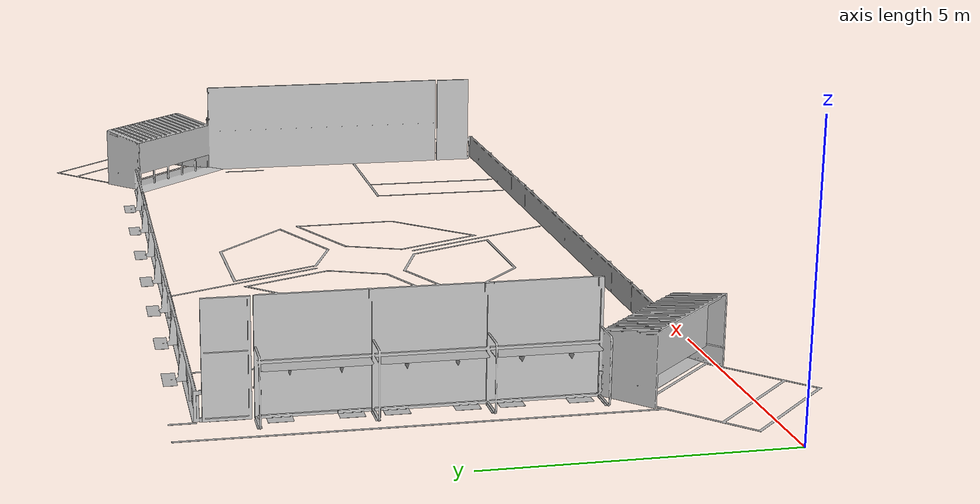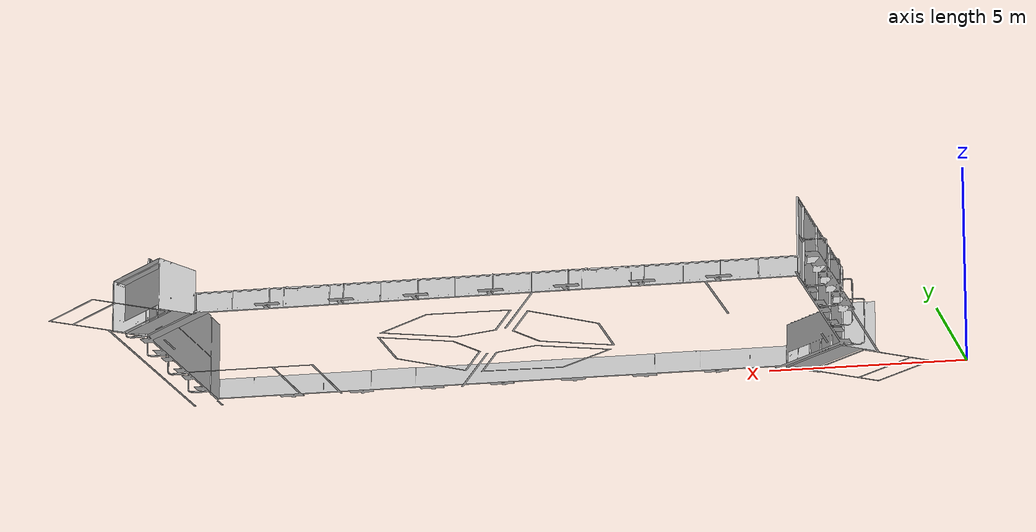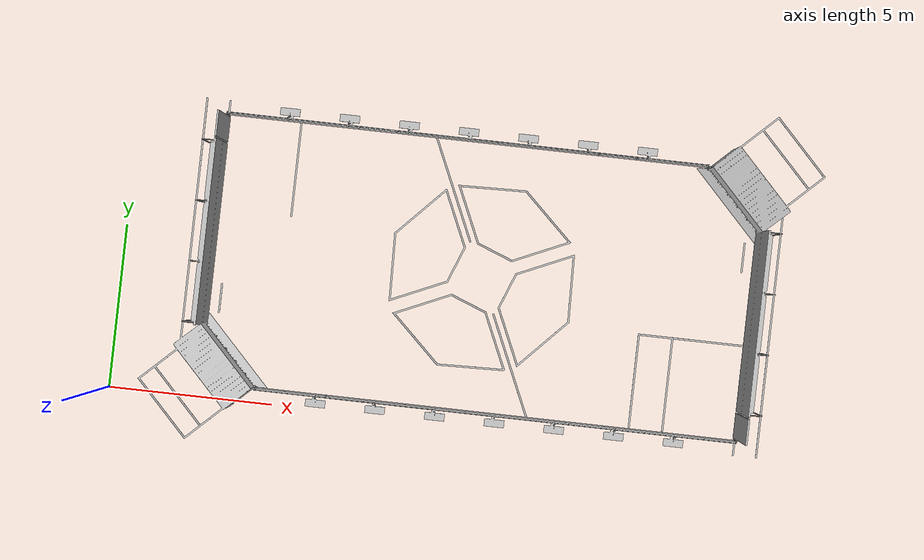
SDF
<?xml version="1.0" encoding="utf-8"?>
<sdf version="1.7">
  <model name="2022-Field">
    <pose>0 0 -0.0519747499997509 0 0 0</pose>
    <link name="Field">
      <gravity>1</gravity>
      <self_collide>0</self_collide>
      <pose>10.978866823315 4.57725352273595 0.691859881374033 1.5707963267949 8.5056076161269E-19 3.14159265358979</pose>
      <must_be_base_link>1</must_be_base_link>
      <velocity_decay>
        <linear>0</linear>
        <angular>0</angular>
      </velocity_decay>

      <!-- Lost solidworks 2022-Field model - so now using sides only model for collisions -->
      <collision name="Field_collision">
        <pose>0.00606682331500135 -0.696635081374032 0.00525352273594806 0 0 0</pose>
        <geometry>
          <mesh>
            <scale>1 1 1</scale>
            <uri>model://2022-Field/meshes/Field_col.STL</uri>
          </mesh>
        </geometry>
        <surface>
           <contact>
            <ode>
              <min_depth>0.001</min_depth>
              <kd>1</kd>
              <kp>1e6</kp>
            </ode>
          </contact>
          <friction>
            <ode>
              <mu>0</mu>
              <mu2>0</mu2>
            </ode>
          </friction>
        </surface>
      </collision>

      <visual name="Field_visual">
        <pose>0.00606682331500135 -0.696635081374032 -0.00525352273594806 0 0 0</pose>
        <material>
          <ambient>0.752941176470588 0.752941176470588 0.752941176470588 1</ambient>
          <diffuse>0.752941176470588 0.752941176470588 0.752941176470588 1</diffuse>
        </material>
        <geometry>
          <mesh>
            <scale>1 1 1</scale>
            <uri>model://2022-Field/meshes/Field.STL</uri>
          </mesh>
        </geometry>
      </visual>
    </link>
    <joint name="Field-World" type="fixed">
      <parent>world</parent>
      <child>Field</child>
   </joint>

  </model>
</sdf>
